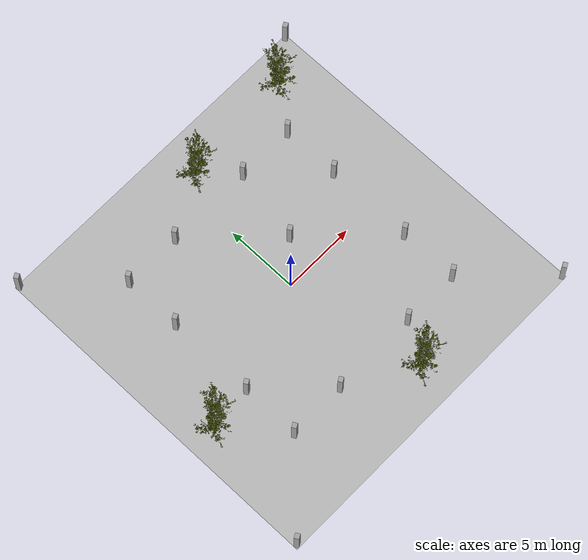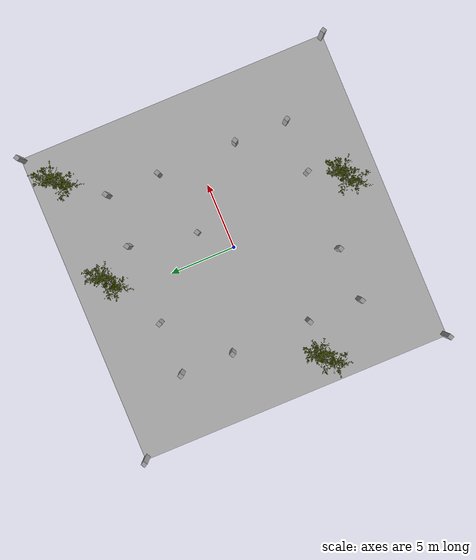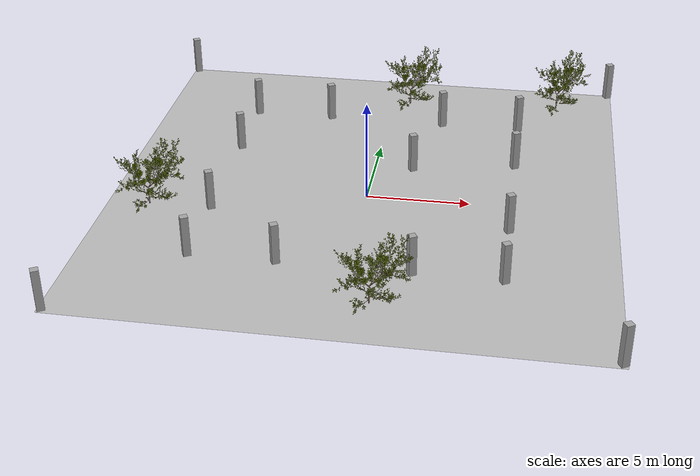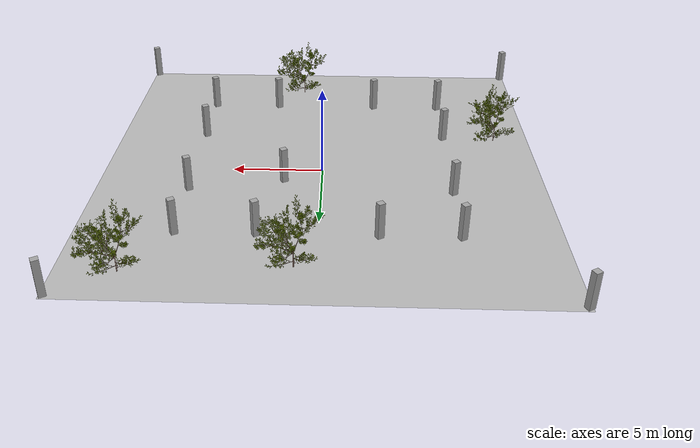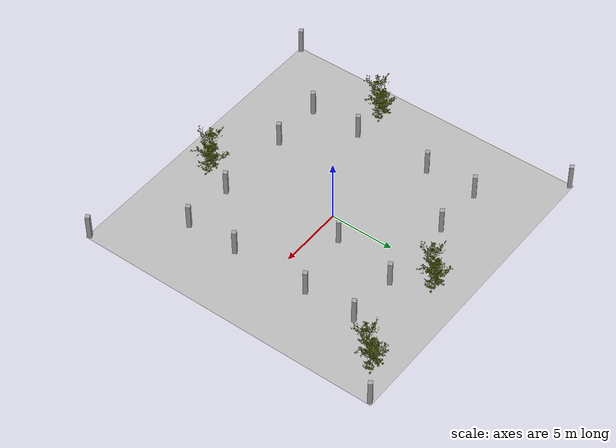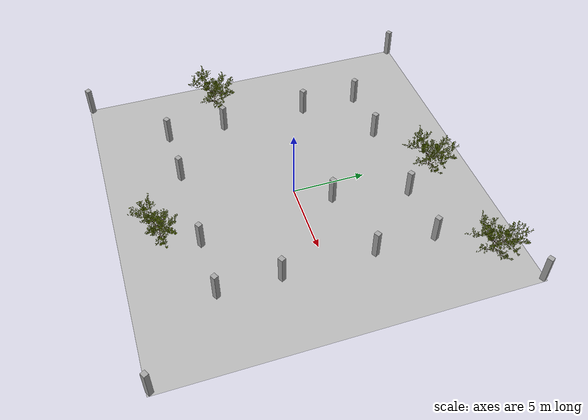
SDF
<sdf version="1.4">
 <world name="default">
  <scene><ambient>0.5 0.5 0.5 1</ambient><background>0.5 0.5 0.5 1</background><shadows>false</shadows></scene>
  <physics type="ode">
   <gravity>0 0 -9.81</gravity>
   <ode>
    <solver><type>quick</type><iters>500</iters><sor>1.3</sor></solver>
    <constraints>
     <cfm>0.0</cfm>
     <erp>0.2</erp>
     <contact_max_correcting_vel>10</contact_max_correcting_vel>
     <contact_surface_layer>0.001</contact_surface_layer>
    </constraints>
   </ode>
   <max_step_size>0.001</max_step_size>
  </physics>
  <light type="directional" name="directional_light_1">
   <pose>0 20 20 0.1 0.1 0</pose>
   <diffuse>1 1 1 1</diffuse>
   <specular>1 1 1 1</specular>
   <attenuation><range>300</range></attenuation>
   <direction>0.1 0.1 -1</direction>
   <cast_shadows>false</cast_shadows>
  </light>
  <model name="landscape">
   <link name="landscape_link">
    <pose>.0 .0 0.5 0 0 0</pose>
    <collision name="landscape_collision">
     <geometry><mesh><uri>model://worlds/models/minefield_grass6.dae</uri><scale>1 1 0.4</scale></mesh></geometry>
    </collision>
    <visual name="landscape">
     <geometry><mesh><uri>model://worlds/models/minefield_grass6.dae</uri><scale>1 1 0.4</scale></mesh></geometry>
     <cast_shadows>false</cast_shadows>
    </visual>
   </link>
   <static>true</static>
  </model>
  <model name="tree2">
   <static>true</static>
   <link name="tree2_link">
    <pose>9 10 0.5 0 0 0.3</pose>
    <collision name="tree2_collision">
     <geometry><mesh><uri>model://worlds/models/Bush1.dae</uri><scale>1 1 1</scale></mesh></geometry>
    </collision>
    <visual name="tree2_visual">
     <geometry><mesh><uri>model://worlds/models/Bush1.dae</uri><scale>1 1 1</scale></mesh></geometry>
     <cast_shadows>false</cast_shadows>
    </visual>
   </link>
  </model>
  <model name="tree3">
   <static>true</static>
   <link name="tree3_link">
    <pose>1.5 -9.3 0.5 0 0 0</pose>
    <collision name="tree3_collision">
     <geometry><mesh><uri>model://worlds/models/Bush1.dae</uri><scale>1 1 1</scale></mesh></geometry>
    </collision>
    <visual name="tree3_visual">
     <geometry><mesh><uri>model://worlds/models/Bush1.dae</uri><scale>1 1 1</scale></mesh></geometry>
     <cast_shadows>false</cast_shadows>
    </visual>
   </link>
  </model>
  <model name="tree4">
   <static>true</static>
   <link name="tree4_link">
    <pose>1 9.4 0.5 0 0 0.1</pose>
    <collision name="tree4_collision">
     <geometry><mesh><uri>model://worlds/models/Bush1.dae</uri><scale>1 1 1</scale></mesh></geometry>
    </collision>
    <visual name="tree4_visual">
     <geometry><mesh><uri>model://worlds/models/Bush1.dae</uri><scale>1 1 1</scale></mesh></geometry>
     <cast_shadows>false</cast_shadows>
    </visual>
   </link>
  </model>
  <model name="tree7">
   <static>true</static>
   <link name="tree7_link">
    <pose>-10 -3 0.5 0 0 0.2</pose>
    <collision name="tree7_collision">
     <geometry><mesh><uri>model://worlds/models/Bush1.dae</uri><scale>1 1 1</scale></mesh></geometry>
    </collision>
    <visual name="tree7_visual">
     <geometry><mesh><uri>model://worlds/models/Bush1.dae</uri><scale>1 1 1</scale></mesh></geometry>
     <cast_shadows>false</cast_shadows>
    </visual>
   </link>
  </model>
  <model name="cornerstone">
   <static>true</static>
   <link name="cornerstone_link">
    <pose>11.8 -11.8 0.5 0 0 0.5</pose>
    <collision name="cornerstone_collision">
     <geometry><mesh><uri>model://worlds/models/cornerstone.dae</uri><scale>0.5 0.5 0.28</scale></mesh></geometry>
    </collision>
    <visual name="cornerstone_visual">
     <geometry><mesh><uri>model://worlds/models/cornerstone.dae</uri><scale>0.5 0.5 0.28</scale></mesh></geometry>
     <cast_shadows>false</cast_shadows>
    </visual>
   </link>
  </model>
  <model name="cornerstone2">
   <static>true</static>
   <link name="cornerstone_link2">
    <pose>11.8 11.8 0.5 0 0 0.5</pose>
    <collision name="cornerstone_collision2">
     <geometry><mesh><uri>model://worlds/models/cornerstone.dae</uri><scale>0.5 0.5 0.28</scale></mesh></geometry>
    </collision>
    <visual name="cornerstone_visual2">
     <geometry><mesh><uri>model://worlds/models/cornerstone.dae</uri><scale>0.5 0.5 0.28</scale></mesh></geometry>
     <cast_shadows>false</cast_shadows>
    </visual>
   </link>
  </model>
  <model name="cornerstone3">
   <static>true</static>
   <link name="cornerstone_link3">
    <pose>-11.8 11.8 0.5 0 0 0.5</pose>
    <collision name="cornerstone_collision3">
     <geometry><mesh><uri>model://worlds/models/cornerstone.dae</uri><scale>0.5 0.5 0.28</scale></mesh></geometry>
    </collision>
    <visual name="cornerstone_visual3">
     <geometry><mesh><uri>model://worlds/models/cornerstone.dae</uri><scale>0.5 0.5 0.28</scale></mesh></geometry>
     <cast_shadows>false</cast_shadows>
    </visual>
   </link>
  </model>
  <model name="cornerstone4">
   <static>true</static>
   <link name="cornerstone_link4">
    <pose>-11.8 -11.8 0.5 0 0 0.5</pose>
    <collision name="cornerstone_collision4">
     <geometry><mesh><uri>model://worlds/models/cornerstone.dae</uri><scale>0.5 0.5 0.28</scale></mesh></geometry>
    </collision>
    <visual name="cornerstone_visual4">
     <geometry><mesh><uri>model://worlds/models/cornerstone.dae</uri><scale>0.5 0.5 0.28</scale></mesh></geometry>
     <cast_shadows>false</cast_shadows>
    </visual>
   </link>
  </model>
  <model name="cornerstone5">
   <static>true</static>
   <link name="cornerstone_link5">
    <pose>2 2 0.5 0 0 0.5</pose>
    <collision name="cornerstone_collision5">
     <geometry><mesh><uri>model://worlds/models/cornerstone.dae</uri><scale>0.5 0.5 0.28</scale></mesh></geometry>
    </collision>
    <visual name="cornerstone_visual5">
     <geometry><mesh><uri>model://worlds/models/cornerstone.dae</uri><scale>0.5 0.5 0.28</scale></mesh></geometry>
     <cast_shadows>false</cast_shadows>
    </visual>
   </link>
  </model>
  <model name="cornerstone6">
   <static>true</static>
   <link name="cornerstone_link6">
    <pose>7 7 0.5 0 0 0.5</pose>
    <collision name="cornerstone_collision6">
     <geometry><mesh><uri>model://worlds/models/cornerstone.dae</uri><scale>0.5 0.5 0.28</scale></mesh></geometry>
    </collision>
    <visual name="cornerstone_visual6">
     <geometry><mesh><uri>model://worlds/models/cornerstone.dae</uri><scale>0.5 0.5 0.28</scale></mesh></geometry>
     <cast_shadows>false</cast_shadows>
    </visual>
   </link>
  </model>
  <model name="cornerstone7">
   <static>true</static>
   <link name="cornerstone_link7">
    <pose>-7 7 0.5 0 0 0.5</pose>
    <collision name="cornerstone_collision7">
     <geometry><mesh><uri>model://worlds/models/cornerstone.dae</uri><scale>0.5 0.5 0.28</scale></mesh></geometry>
    </collision>
    <visual name="cornerstone_visual7">
     <geometry><mesh><uri>model://worlds/models/cornerstone.dae</uri><scale>0.5 0.5 0.28</scale></mesh></geometry>
     <cast_shadows>false</cast_shadows>
    </visual>
   </link>
  </model>
  <model name="cornerstone8">
   <static>true</static>
   <link name="cornerstone_link8">
    <pose>-7 -7 0.5 0 0 0.5</pose>
    <collision name="cornerstone_collision8">
     <geometry><mesh><uri>model://worlds/models/cornerstone.dae</uri><scale>0.5 0.5 0.28</scale></mesh></geometry>
    </collision>
    <visual name="cornerstone_visual8">
     <geometry><mesh><uri>model://worlds/models/cornerstone.dae</uri><scale>0.5 0.5 0.28</scale></mesh></geometry>
     <cast_shadows>false</cast_shadows>
    </visual>
   </link>
  </model>
  <model name="cornerstone9">
   <static>true</static>
   <link name="cornerstone_link9">
    <pose>7 -7 0.5 0 0 0.5</pose>
    <collision name="cornerstone_collision9">
     <geometry><mesh><uri>model://worlds/models/cornerstone.dae</uri><scale>0.5 0.5 0.28</scale></mesh></geometry>
    </collision>
    <visual name="cornerstone_visual9">
     <geometry><mesh><uri>model://worlds/models/cornerstone.dae</uri><scale>0.5 0.5 0.28</scale></mesh></geometry>
     <cast_shadows>false</cast_shadows>
    </visual>
   </link>
  </model>
  <model name="cornerstone10">
   <static>true</static>
   <link name="cornerstone_link10">
    <pose>3 -7 0.5 0 0 0.5</pose>
    <collision name="cornerstone_collision10">
     <geometry><mesh><uri>model://worlds/models/cornerstone.dae</uri><scale>0.5 0.5 0.28</scale></mesh></geometry>
    </collision>
    <visual name="cornerstone_visual10">
     <geometry><mesh><uri>model://worlds/models/cornerstone.dae</uri><scale>0.5 0.5 0.28</scale></mesh></geometry>
     <cast_shadows>false</cast_shadows>
    </visual>
   </link>
  </model>
  <model name="cornerstone11">
   <static>true</static>
   <link name="cornerstone_link11">
    <pose>7 -3 0.5 0 0 0.5</pose>
    <collision name="cornerstone_collision11">
     <geometry><mesh><uri>model://worlds/models/cornerstone.dae</uri><scale>0.5 0.5 0.28</scale></mesh></geometry>
    </collision>
    <visual name="cornerstone_visual11">
     <geometry><mesh><uri>model://worlds/models/cornerstone.dae</uri><scale>0.5 0.5 0.28</scale></mesh></geometry>
     <cast_shadows>false</cast_shadows>
    </visual>
   </link>
  </model>
  <model name="cornerstone12">
   <static>true</static>
   <link name="cornerstone_link12">
    <pose>7 3 0.5 0 0 0.5</pose>
    <collision name="cornerstone_collision12">
     <geometry><mesh><uri>model://worlds/models/cornerstone.dae</uri><scale>0.5 0.5 0.28</scale></mesh></geometry>
    </collision>
    <visual name="cornerstone_visual12">
     <geometry><mesh><uri>model://worlds/models/cornerstone.dae</uri><scale>0.5 0.5 0.28</scale></mesh></geometry>
     <cast_shadows>false</cast_shadows>
    </visual>
   </link>
  </model>
  <model name="cornerstone13">
   <static>true</static>
   <link name="cornerstone_link13">
    <pose>-7 3 0.5 0 0 0.5</pose>
    <collision name="cornerstone_collision13">
     <geometry><mesh><uri>model://worlds/models/cornerstone.dae</uri><scale>0.5 0.5 0.28</scale></mesh></geometry>
    </collision>
    <visual name="cornerstone_visual13">
     <geometry><mesh><uri>model://worlds/models/cornerstone.dae</uri><scale>0.5 0.5 0.28</scale></mesh></geometry>
     <cast_shadows>false</cast_shadows>
    </visual>
   </link>
  </model>
  <model name="cornerstone14">
   <static>true</static>
   <link name="cornerstone_link14">
    <pose>-7 -3 0.5 0 0 0.5</pose>
    <collision name="cornerstone_collision14">
     <geometry><mesh><uri>model://worlds/models/cornerstone.dae</uri><scale>0.5 0.5 0.28</scale></mesh></geometry>
    </collision>
    <visual name="cornerstone_visual14">
     <geometry><mesh><uri>model://worlds/models/cornerstone.dae</uri><scale>0.5 0.5 0.28</scale></mesh></geometry>
     <cast_shadows>false</cast_shadows>
    </visual>
   </link>
  </model>
  <model name="cornerstone15">
   <static>true</static>
   <link name="cornerstone_link15">
    <pose>3 7 0.5 0 0 0.5</pose>
    <collision name="cornerstone_collision15">
     <geometry><mesh><uri>model://worlds/models/cornerstone.dae</uri><scale>0.5 0.5 0.28</scale></mesh></geometry>
    </collision>
    <visual name="cornerstone_visual15">
     <geometry><mesh><uri>model://worlds/models/cornerstone.dae</uri><scale>0.5 0.5 0.28</scale></mesh></geometry>
     <cast_shadows>false</cast_shadows>
    </visual>
   </link>
  </model>
  <model name="cornerstone16">
   <static>true</static>
   <link name="cornerstone_link16">
    <pose>-3 -7 0.5 0 0 0.5</pose>
    <collision name="cornerstone_collision16">
     <geometry><mesh><uri>model://worlds/models/cornerstone.dae</uri><scale>0.5 0.5 0.28</scale></mesh></geometry>
    </collision>
    <visual name="cornerstone_visual16">
     <geometry><mesh><uri>model://worlds/models/cornerstone.dae</uri><scale>0.5 0.5 0.28</scale></mesh></geometry>
     <cast_shadows>false</cast_shadows>
    </visual>
   </link>
  </model>
  <model name="cornerstone17">
   <static>true</static>
   <link name="cornerstone_link17">
    <pose>-3 7 0.5 0 0 0.5</pose>
    <collision name="cornerstone_collision17">
     <geometry><mesh><uri>model://worlds/models/cornerstone.dae</uri><scale>0.5 0.5 0.28</scale></mesh></geometry>
    </collision>
    <visual name="cornerstone_visual17">
     <geometry><mesh><uri>model://worlds/models/cornerstone.dae</uri><scale>0.5 0.5 0.28</scale></mesh></geometry>
     <cast_shadows>false</cast_shadows>
    </visual>
   </link>
  </model>
 </world>
</sdf>
